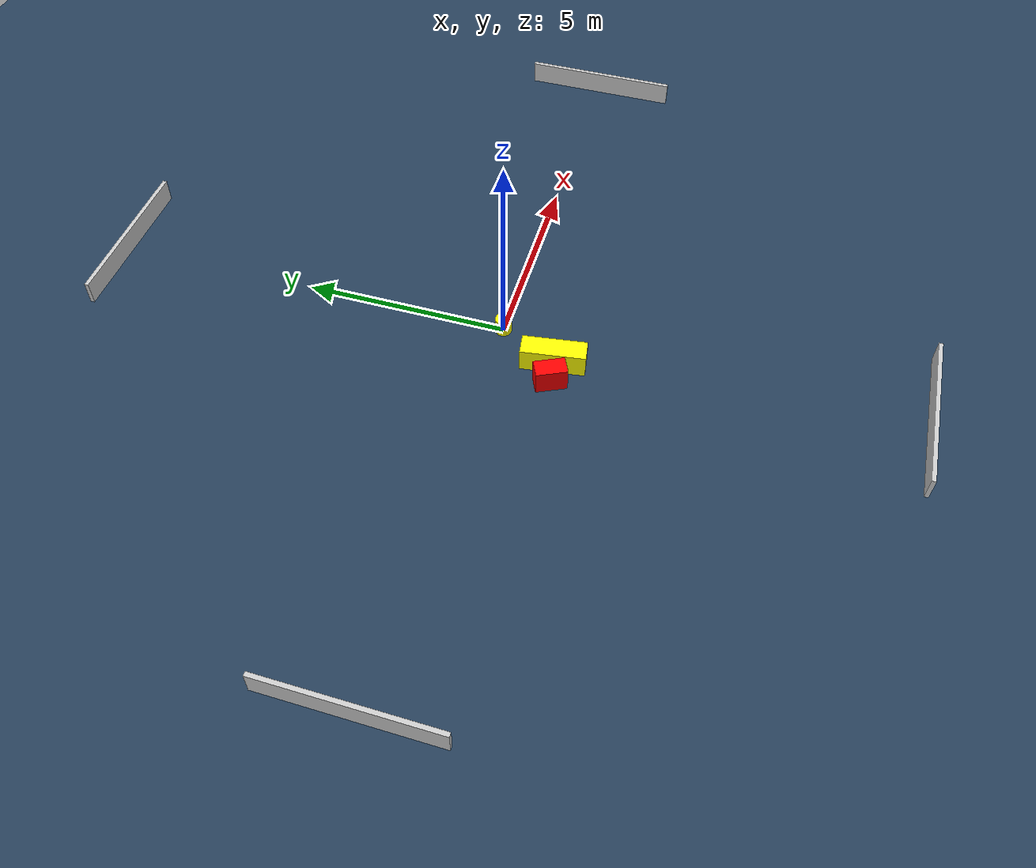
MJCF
<?xml version="1.0" ?>
<mujoco model="generated_environment">
  <option timestep="0.01" integrator="RK4" cone="elliptic"/>
  <default>
    <geom density="1"/>
  </default>
  <asset>
    <texture builtin="gradient" height="3072" name="skybox" rgb1="0.3 0.5 0.7" rgb2="0 0 0" type="skybox" width="512"/>
    <texture builtin="checker" height="300" name="groundplane" rgb1="0.2 0.3 0.4" rgb2="0.1 0.2 0.3" type="2d" width="300"/>
    <material name="groundplane" reflectance="0.2" texrepeat="5 5" texture="groundplane"/>
  </asset>
  <worldbody>
    <light dir="0 0 -1" directional="true" pos="0 0 1.5"/>
    <geom condim="3" friction="0.5 0.005 0.001" material="groundplane" name="floor" pos="0 0 0" size="0 0 0.05" type="plane"/>
    <body name="walls">
      <geom name="wall_1" condim="4" pos="-10.0 0.0 0.3" rgba="0.800000011920929 0.800000011920929 0.800000011920929 1.0" size="0.05 2.0 0.3" type="box"/>
      <geom name="wall_2" condim="4" pos="10.0 0.0 0.3" rgba="0.800000011920929 0.800000011920929 0.800000011920929 1.0" size="0.05 2.0 0.3" type="box"/>
      <geom name="wall_3" condim="4" pos="0.0 -10.0 0.3" rgba="0.800000011920929 0.800000011920929 0.800000011920929 1.0" size="2.0 0.05 0.3" type="box"/>
      <geom name="wall_4" condim="4" pos="0.0 10.0 0.3" rgba="0.800000011920929 0.800000011920929 0.800000011920929 1.0" size="2.0 0.05 0.3" type="box"/>
    </body>
    <body name="robot">
      <joint name="joint_x" type="slide" pos="0 0 0" axis="1 0 0"/>
      <joint name="joint_y" type="slide" pos="0 0 0" axis="0 1 0"/>
      <geom name="robot" type="cylinder" pos="0.0 0.0 0.2" size="0.2 0.2 0.0" mass="5.0" friction="1.0 0.005 0.0001" condim="4" rgba="1.0 1.0 0.0 1.0"/>
    </body>
    <body name="obstacle_1_movable">
      <geom name="obstacle_1_movable" condim="4" pos="-0.6871258838174724 -1.4201436217938619 0.3" euler="0 0 278.2147756544865" friction="0.0 0.005 0.001" rgba="1.0 1.0 0.0 1.0" size="0.7703452533276363 0.2585857463595926 0.3" type="box" mass="0.1"/>
      <joint type="free"/>
    </body>
    <body name="obstacle_2_static">
      <geom name="obstacle_2_static" condim="4" pos="-1.275871061330214 -1.4975077687391702 0.3" euler="0 0 115.24765247861242" friction="0.0 0.005 0.001" rgba="1.0 0.0 0.0 1.0" size="0.37433335722831573 0.21525030961501349 0.3" type="box"/>
    </body>
  </worldbody>
  <actuator>
    <motor name="actuator_x" joint="joint_x" gear="1" ctrlrange="-1 1"/>
    <motor name="actuator_y" joint="joint_y" gear="1" ctrlrange="-1 1"/>
  </actuator>
</mujoco>
